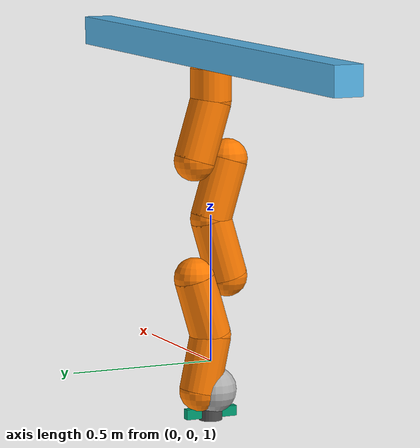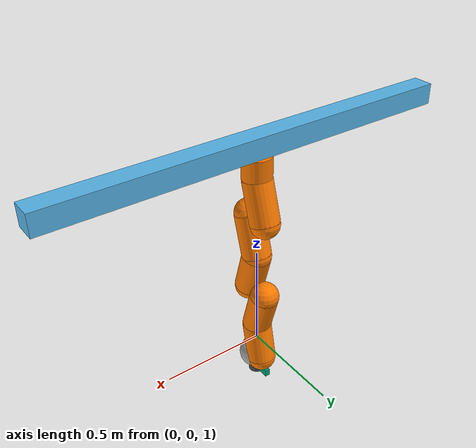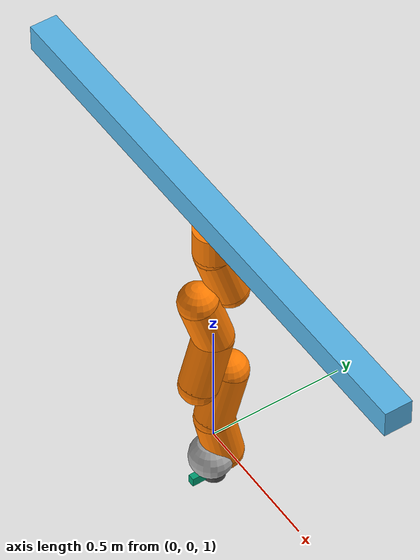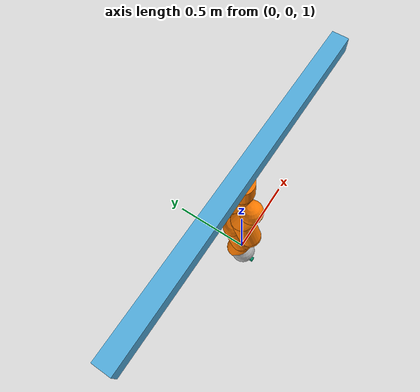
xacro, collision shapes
<?xml version="1.0"?>
<robot xmlns:xacro="http://www.ros.org/wiki/xacro" name="single_lwr_robot">

    <!-- Include all models -->
    <xacro:include filename="$(find lwr_description)/model/kuka_lwr.urdf.xacro"/>

    <link name="world" />
    <!-- and assemble your robot -->
    <link name="box">
        <inertial>
            <mass value="5.0"/>
            <origin rpy="0 0 0" xyz="0 0 0"/>
            <inertia ixx="0.01"
                     iyy="0.01"
                     izz="0.01"
                     ixy="0" iyz="0" ixz="0"/>
        </inertial>
        <visual>
            <origin xyz="0 0 2.05" rpy="0 0 0"/>
            <geometry>
                <box size="2.0 0.1 0.1"/>
            </geometry>
        </visual>
        <collision>
            <origin xyz="0 0 2.05" rpy="0 0 0"/>
            <geometry>
                <box size="2.0 0.1 0.1"/>
            </geometry>
        </collision>
    </link>

    <joint name="fix" type="fixed">
        <origin xyz="0 0 0" rpy="0 0 0"/>
        <parent link="world"/>
        <child link="box"/>
    </joint>

    <gazebo reference="box">
        <static>true</static>>
    </gazebo>

    <!-- using the models -->
    <xacro:kuka_lwr parent="box" name="lwr">
        <origin xyz="0 0 2" rpy="0 3.14 0"/>
    </xacro:kuka_lwr>

    --
    <xacro:include filename="$(find lwr_testing)/sensors/asus_camera.urdf.xacro" />

    <xacro:asus_camera name="xtion" parent="lwr_7_link" >
        <origin xyz="0 0 0" rpy="0 -1.57 0"/>
    </xacro:asus_camera>

</robot>

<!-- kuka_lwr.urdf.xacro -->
<robot name="kuka_lwr" xmlns:xacro="http://www.ros.org/wiki/xacro">

	<!-- utils /-->
	<xacro:include filename="$(find lwr_description)/model/utils.xacro"/>
	<xacro:include filename="$(find lwr_description)/model/kuka_materials.xacro"
	/>

	<!-- gazebo and transmission models /-->
	<xacro:include filename="$(find lwr_description)/model/kuka_lwr.gazebo.xacro"/>
	<xacro:include filename="$(find lwr_description)/model/kuka_lwr.transmission.xacro"/>

	<!-- properties /-->
	<xacro:property name="base_mass" value="2.0"/>
	<xacro:property name="link_mass" value="2.35"/>
    <xacro:property name="wrist_mass" value="1.1"/>
    <xacro:property name="tip_mass" value="0.25"/>
	<xacro:property name="velocity_scale" value="1"/>
	<xacro:property name="effort_scale" value="1"/>

	<xacro:property name="max_stiffness" value="5000"/>
	<xacro:property name="min_stiffness" value="0"/>
	<xacro:property name="rate_stiffness" value="20000"/> <!-- reflex to stiffness -->

	<!-- URDF model /-->
	<xacro:macro name="kuka_lwr" params="parent name *origin">

		<!-- First (shoulder) element of the arm. Fixed to its parent. -->
		<joint name="${parent}_${name}_base_joint" type="fixed">
			<xacro:insert_block name="origin"/>
			<origin xyz="0 0 0" rpy="0 0 0"/>
			<parent link="${parent}"/>
			<child link="${name}_base_link"/>
		</joint>

		<link name="${name}_base_link">
			<inertial>
				<mass value="${base_mass}"/>
				<origin xyz="0 0 0.055"  />
				<cylinder_inertia_def radius="0.06" length="0.11" mass="${base_mass}"/>
			</inertial>
			<visual>
				<origin xyz="0 0 0" rpy="0 0 ${M_PI}"/>
				<geometry>
					<mesh filename="package://lwr_description/meshes/lwr4plus/visual/base.STL"/>
				</geometry>
				<material name="Kuka/Orange"/>
			</visual>
			<collision>
				<origin xyz="0 0 0.055" rpy="0 0 ${M_PI}"/>
				<geometry>
					<cylinder radius="0.07" length="0.11"/>
				</geometry>
			</collision>
		</link>

		<!-- Second segment of the arm. Joint along z-axis -->
		<joint name="${name}_a1_joint" type="revolute">
			<origin xyz="0 0 0.11" rpy="0 0 0"/>
			<axis xyz="0 0 1"/>
			<limit lower="${-170 * M_PI / 180}" upper="${170 * M_PI / 180}" effort="176" velocity="${velocity_scale * 110 * M_PI / 180}" />
			<dynamics friction="10.0" damping="1.0"/>
			<parent link="${name}_base_link"/>
			<child link="${name}_1_link"/>
		</joint>

		<joint name="${name}_a1_joint_stiffness" type="revolute">
			<axis xyz="0 0 1"/>
			<limit lower="${min_stiffness}" upper="${max_stiffness}" effort="0" velocity="${rate_stiffness}" />
			<safety_controller soft_lower_limit="${min_stiffness}" soft_upper_limit="${max_stiffness}" k_position="30" k_velocity="30"/>
			<parent link="${name}_base_link"/>
			<child link="${name}_1_link_dummy"/>
		</joint>
		<link name="${name}_1_link_dummy"/>

		<link name="${name}_1_link">
			<inertial>
				<mass value="${link_mass}"/>
				<origin rpy="0 0 0" xyz="0 -0.06 0.130"/>
				<cuboid_inertia_def length="0.12" width="0.06" height="0.260" mass="${link_mass}"/>
			</inertial>
			<visual>
				<origin xyz="0 0 -0.008" rpy="0 0 ${M_PI}"/>
				<geometry>
					<mesh filename="package://lwr_description/meshes/lwr4plus/visual/link_1.STL"/>
				</geometry>
				<material name="Kuka/Orange"/>
			</visual>
			<collision>
				<origin xyz="0 0 0.0" rpy="0 0 0"/>
				<geometry>
					<sphere radius="0.07"/>
				</geometry>
			</collision>
			<collision>
				<origin xyz="0 0.06 0.2" rpy="0 0 0"/>
				<geometry>
					<sphere radius="0.07"/>
				</geometry>
			</collision>
			<collision>
				<origin xyz="0 0.03 0.1" rpy="-0.291 0 0"/>
				<geometry>
					<cylinder radius="0.07" length="0.208"/>
				</geometry>
			</collision>
		</link>

		<!-- Third segment of the arm. Joint along y-axis -->
		<joint name="${name}_a2_joint" type="revolute">
			<origin xyz="0 0 0.2005" rpy="0 0 0"/>
			<axis xyz="0 -1 0"/>
			<limit lower="${-120 * M_PI / 180}" upper="${120 * M_PI / 180}" effort="176" velocity="${velocity_scale * 110 * M_PI / 180}" />
			<dynamics friction="10.0" damping="1.0"/>
			<parent link="${name}_1_link"/>
			<child link="${name}_2_link"/>
		</joint>

		<joint name="${name}_a2_joint_stiffness" type="revolute">
			<axis xyz="0 0 1"/>
			<limit lower="${min_stiffness}" upper="${max_stiffness}" effort="0" velocity="${rate_stiffness}" />
			<safety_controller soft_lower_limit="${min_stiffness}" soft_upper_limit="${max_stiffness}" k_position="30" k_velocity="30"/>
			<parent link="${name}_1_link"/>
			<child link="${name}_2_link_dummy"/>
		</joint>
		<link name="${name}_2_link_dummy"/>

		<link name="${name}_2_link">
			<inertial>
				<mass value="${link_mass}"/>
				<origin rpy="0 0 0" xyz="0 0.06 ${0.130 - 0.06}"/>
				<cuboid_inertia_def length="0.12" width="0.06" height="0.260" mass="${link_mass}"/>
			</inertial>

			<visual>
				<origin xyz="0 0 0.0" rpy="0 0 ${M_PI}"/>
				<geometry>
					<mesh filename="package://lwr_description/meshes/lwr4plus/visual/link_2.STL"/>
				</geometry>
				<material name="Kuka/Orange"/>
			</visual>
			<collision>
				<origin xyz="0 0 0.2" rpy="0 0 0"/>
				<geometry>
					<sphere radius="0.07"/>
				</geometry>
			</collision>
			<collision>
				<origin xyz="0 -0.06 0.0" rpy="0 0 0"/>
				<geometry>
					<sphere radius="0.07"/>
				</geometry>
			</collision>
			<collision>
				<origin xyz="0 -0.03 0.1" rpy="-0.291 0 0"/>
				<geometry>
					<cylinder radius="0.07" length="0.208"/>
				</geometry>
			</collision>
		</link>

		<!-- Fourth element of the arm. z-axis -->
		<joint name="${name}_e1_joint" type="revolute">
			<origin xyz="0 0 0.20" rpy="0 0 0"/>
			<axis xyz="0 0 1"/>
			<limit lower="${-170 * M_PI / 180}" upper="${170 * M_PI / 180}" effort="100" velocity="${velocity_scale * 128 * M_PI / 180}" />
			<dynamics friction="10.0" damping="1.0"/>
			<parent link="${name}_2_link"/>
			<child link="${name}_3_link"/>
		</joint>

		<joint name="${name}_e1_joint_stiffness" type="revolute">
			<axis xyz="0 0 1"/>
			<limit lower="${min_stiffness}" upper="${max_stiffness}" effort="0" velocity="${rate_stiffness}" />
			<safety_controller soft_lower_limit="${min_stiffness}" soft_upper_limit="${max_stiffness}" k_position="30" k_velocity="30"/>
			<parent link="${name}_2_link"/>
			<child link="${name}_3_link_dummy"/>
		</joint>
		<link name="${name}_3_link_dummy"/>

		<link name="${name}_3_link">
			<inertial>
				<mass value="${link_mass}"/>
				<origin rpy="0 0 0" xyz="0 0.06 0.130"/>
				<cuboid_inertia_def length="0.12" width="0.06" height="0.260" mass="${link_mass}"/>
			</inertial>

			<visual>
				<origin xyz="0 0 -0.008" rpy="0 0 ${M_PI}"/>
				<geometry>
					<mesh filename="package://lwr_description/meshes/lwr4plus/visual/link_3.STL"/>
				</geometry>
				<material name="Kuka/Orange"/>
			</visual>
			<collision>
				<origin xyz="0 0 0.0" rpy="0 0 0"/>
				<geometry>
					<sphere radius="0.07"/>
				</geometry>
			</collision>
			<collision>
				<origin xyz="0 -0.06 0.2" rpy="0 0 0"/>
				<geometry>
					<sphere radius="0.07"/>
				</geometry>
			</collision>
			<collision>
				<origin xyz="0 -0.03 0.1" rpy="0.291 0 0"/>
				<geometry>
					<cylinder radius="0.07" length="0.208"/>
				</geometry>
			</collision>
		</link>

		<!-- fifth element of the arm. x-axis -->
		<joint name="${name}_a3_joint" type="revolute">
			<origin xyz="0 0 0.20" rpy="0 0 0"/>
			<axis xyz="0 1 0"/>
			<limit lower="${-120 * M_PI / 180}" upper="${120 * M_PI / 180}" effort="100" velocity="${velocity_scale * 128 * M_PI / 180}" />
			<dynamics friction="10.0" damping="1.0"/>
			<parent link="${name}_3_link"/>
			<child link="${name}_4_link"/>
		</joint>

		<joint name="${name}_a3_joint_stiffness" type="revolute">
			<axis xyz="0 0 1"/>
			<limit lower="${min_stiffness}" upper="${max_stiffness}" effort="0" velocity="${rate_stiffness}" />
			<safety_controller soft_lower_limit="${min_stiffness}" soft_upper_limit="${max_stiffness}" k_position="30" k_velocity="30"/>
			<parent link="${name}_3_link"/>
			<child link="${name}_4_link_dummy"/>
		</joint>
		<link name="${name}_4_link_dummy"/>

		<link name="${name}_4_link">
			<inertial>
				<mass value="${link_mass}"/>
				<origin rpy="0 0 0" xyz="0 -0.06 ${0.130 - 0.06}"/>
				<cuboid_inertia_def length="0.12" width="0.06" height="0.2600" mass="${link_mass}"/>
			</inertial>

			<visual>
				<origin xyz="0 0 0.0" rpy="0 0 ${M_PI}"/>
				<geometry>
					<mesh filename="package://lwr_description/meshes/lwr4plus/visual/link_4.STL"/>
				</geometry>
				<material name="Kuka/Orange"/>
			</visual>
			<collision>
			<origin xyz="0 0 0.2" rpy="0 0 0"/>
			<geometry>
				<sphere radius="0.07"/>
			</geometry>
			</collision>
			<collision>
				<origin xyz="0 0.06 0.0" rpy="0 0 0"/>
				<geometry>
					<sphere radius="0.07"/>
				</geometry>
			</collision>
			<collision>
				<origin xyz="0 0.03 0.1" rpy="0.291 0 0"/>
				<geometry>
					<cylinder radius="0.07" length="0.208"/>
				</geometry>
			</collision>
		</link>

		<!-- Sixth element of the arm. z-axis -->
		<joint name="${name}_a4_joint" type="revolute">
			<origin xyz="0 0 0.20" rpy="0 0 0"/>
			<axis xyz="0 0 1"/>
			<limit lower="${-170 * M_PI / 180}" upper="${170 * M_PI / 180}" effort="100" velocity="${velocity_scale * 204 * M_PI / 180}" />
			<dynamics friction="10.0" damping="1.0"/>
			<parent link="${name}_4_link"/>
			<child link="${name}_5_link"/>
		</joint>

		<joint name="${name}_a4_joint_stiffness" type="revolute">
			<axis xyz="0 0 1"/>
			<limit lower="${min_stiffness}" upper="${max_stiffness}" effort="0" velocity="${rate_stiffness}" />
			<safety_controller soft_lower_limit="${min_stiffness}" soft_upper_limit="${max_stiffness}" k_position="30" k_velocity="30"/>
			<parent link="${name}_4_link"/>
			<child link="${name}_5_link_dummy"/>
		</joint>
		<link name="${name}_5_link_dummy"/>

		<link name="${name}_5_link">
			<inertial>
				<mass value="${link_mass}"/>
				<origin rpy="0 0 0" xyz="0 0 0.124"/>
				<cuboid_inertia_def length="0.12" width="0.06" height="0.248" mass="${link_mass}"/>
			</inertial>

			<visual>
				<origin xyz="0 0 -0.008" rpy="0 0 ${M_PI}"/>
				<geometry name="${name}_5_geom">
					<mesh filename="package://lwr_description/meshes/lwr4plus/visual/link_5.STL"/>
				</geometry>
				<material name="Kuka/Orange"/>
			</visual>

			<collision>
				<origin xyz="0 0 0.0" rpy="0 0 0"/>
				<geometry>
					<sphere radius="0.07"/>
				</geometry>
			</collision>
			<collision>
				<origin xyz="0 0.04 0.19" rpy="0 0 0"/>
				<geometry>
					<sphere radius="0.07"/>
				</geometry>
			</collision>
			<collision>
				<origin xyz="0 0.02 0.095" rpy="-0.207 0 0"/>
				<geometry>
					<cylinder radius="0.07" length="0.198"/>
				</geometry>
			</collision>
		</link>

		<!-- Seventh element of the arm. z-axis -->
		<joint name="${name}_a5_joint" type="revolute">
			<origin xyz="0 0 0.19" rpy="0 0 0"/>
			<axis xyz="0 -1 0"/>
			<limit lower="${-120 * M_PI / 180}" upper="${120 * M_PI / 180}" effort="38" velocity="${velocity_scale * 184 * M_PI / 180}" />
			<dynamics friction="10.0" damping="1.0"/>
			<parent link="${name}_5_link"/>
			<child link="${name}_6_link"/>
		</joint>

		<joint name="${name}_a5_joint_stiffness" type="revolute">
			<axis xyz="0 0 1"/>
			<limit lower="${min_stiffness}" upper="${max_stiffness}" effort="0" velocity="${rate_stiffness}" />
			<safety_controller soft_lower_limit="${min_stiffness}" soft_upper_limit="${max_stiffness}" k_position="30" k_velocity="30"/>
			<parent link="${name}_5_link"/>
			<child link="${name}_6_link_dummy"/>
		</joint>
		<link name="${name}_6_link_dummy"/>

		<link name="${name}_6_link">
			<inertial>
				<mass value="${wrist_mass}"/>
				<origin rpy="0 0 0" xyz="0 0 0.0625"/>
				<cuboid_inertia_def length="0.125" width="0.125" height="0.125" mass="${wrist_mass}"/>
			</inertial>

			<visual>
				<origin xyz="0 0 0" rpy="0 0 ${M_PI}"/>
				<geometry>
					<mesh filename="package://lwr_description/meshes/lwr4plus/visual/link_6.STL"/>
				</geometry>
			<material name="Kuka/Grey"/>
			</visual>
			<collision>
			<origin xyz="0 -0.01 0" rpy="0 0 ${M_PI}"/>
			<geometry>
				<sphere radius="0.08"/>
			</geometry>
			</collision>
		</link>

		<!-- Eighth element of the arm. z-axis -->
		<joint name="${name}_a6_joint" type="revolute">
			<origin xyz="0 0 0.078" rpy="0 0 0"/>
			<axis xyz="0 0 1"/>
			<limit lower="${-170 * M_PI / 180}" upper="${170 * M_PI / 180}" effort="38" velocity="${velocity_scale * 184 * M_PI / 180}" />
			<dynamics friction="10.0" damping="1.0"/>
			<parent link="${name}_6_link"/>
			<child link="${name}_7_link"/>
		</joint>

		<joint name="${name}_a6_joint_stiffness" type="revolute">
			<axis xyz="0 0 1"/>
			<limit lower="${min_stiffness}" upper="${max_stiffness}" effort="0" velocity="${rate_stiffness}" />
			<safety_controller soft_lower_limit="${min_stiffness}" soft_upper_limit="${max_stiffness}" k_position="30" k_velocity="30"/>
			<parent link="${name}_6_link"/>
			<child link="${name}_7_link_dummy"/>
		</joint>
		<link name="${name}_7_link_dummy"/>

		<link name="${name}_7_link">
			<inertial>
				<mass value="${tip_mass}"/>
				<origin xyz="0 0 0"/>
				<cuboid_inertia_def length="0.1" width="0.1" height="0.1" mass="${tip_mass}"/>
			</inertial>
			<visual>
				<origin xyz="0 0 0" rpy="0 0 ${M_PI}"/>
				<geometry>
					<mesh filename="package://lwr_description/meshes/lwr4plus/visual/link_7.STL"/>
				</geometry>
			<material name="Kuka/DarkGrey"/>
			</visual>

			<collision>
			<origin xyz="0 0 0" rpy="0 0 ${M_PI}"/>
			<geometry>
				<cylinder radius="0.04" length="0.05"/>
			</geometry>
			</collision>
		</link>

		<xacro:kuka_lwr_gazebo name="${name}"/>
		<xacro:kuka_lwr_transmission name="${name}"/>

	</xacro:macro>

</robot>

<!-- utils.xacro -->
<robot xmlns:xacro="http://www.ros.org/wiki/xacro">

  <xacro:property name="M_PI" value="3.1415926535897931"/>

  <!-- Little helper macro to define the inertia matrix needed for links. -->
  <xacro:macro name="cuboid_inertia_def" params="width height length mass">
    <inertia ixx="${mass * (height * height + length * length) / 12}"
             iyy="${mass * (width * width + length * length) / 12}"
             izz="${mass * (width * width + height * height) / 12}"
             ixy="0" iyz="0" ixz="0"/>
  </xacro:macro>

  <!-- length is along the y-axis! -->
  <xacro:macro name="cylinder_inertia_def" params="radius length mass">
    <inertia ixx="${mass * (3 * radius * radius + length * length) / 12}"
             iyy="${mass * radius* radius / 2}"
             izz="${mass * (3 * radius * radius + length * length) / 12}"
             ixy="0" iyz="0" ixz="0"/>
  </xacro:macro>

</robot>

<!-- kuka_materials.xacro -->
<robot xmlns:xacro="http://www.ros.org/wiki/xacro">
  <material name="Kuka/DarkGrey">
    <color rgba="0.3 0.3 0.3 1.0"/>
  </material>

  <material name="Kuka/LightGrey">
    <color rgba="0.8 0.8 0.8 1.0"/>
  </material>

  <material name="Kuka/Red">
    <color rgba="0.3 0.3 0.3 1.0"/>
  </material>

  <material name="Kuka/Black">
    <color rgba="0 0 0 1.0"/>
  </material>

  <material name="Kuka/Orange">
    <color rgba="1.0 0.487 0 1.0"/>
  </material>

  <material name="Kuka/Silver">
    <color rgba="1.0 1.0 1.0 1.0"/>
  </material>

  <material name="Kuka/Grey">
    <color rgba="0.7 0.7 0.7 1.0"/>
  </material>

  <material name="Kuka/Blue">
    <color rgba="0.0 0.0 0.8 1.0"/>
  </material>

</robot>

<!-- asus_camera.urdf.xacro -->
<robot xmlns:xacro="http://ros.org/wiki/xacro">
    <xacro:property name="M_PI" value="3.1415926535897931" />
    <xacro:property name="mesh_scale" value="1" />

    <xacro:macro name="asus_camera_model" params="name parent *origin">
      <joint name="${name}_joint" type="fixed">
        <xacro:insert_block name="origin" />
        <parent link="${parent}"/>
        <child link="${name}_link"/>
      </joint>

      <link name="${name}_depth_sensor" />
      <joint name="${name}_sensor_joint" type="fixed">
        <origin xyz="0 0 0" rpy="0 1.57 0"/>
        <parent link="${name}_link"/>
        <child link="${name}_depth_sensor"/>
      </joint>

      <link name="${name}_link">
        <inertial>
          <mass value="0.200" />
          <origin xyz="0 0 0" rpy="0 0 0" />
          <inertia ixx="5.8083e-4" ixy="0" ixz="0" iyy="3.0833e-5" iyz="0" izz="5.9083e-4" />
        </inertial>
        <visual>
          <origin xyz="0 0 0" rpy="0 0 0" />
          <geometry>
            <mesh filename="package://lwr_testing/meshes/asus_camera_simple.dae" scale="${mesh_scale} ${mesh_scale} ${mesh_scale}"/>
          </geometry>
        </visual>
        <collision>
          <origin xyz="0 0 0" rpy="0 0 0" />
          <geometry>
            <box size="0.035 0.185 0.025"/>
          </geometry>
        </collision>
      </link>

      <joint name="${name}_depth_joint" type="fixed">
        <origin xyz="0.0 0.0 0.0" rpy="0 0 0" />
        <parent link="${name}_link" />
        <child link="${name}_depth_frame"/>
      </joint>

      <link name="${name}_depth_frame"/>

      <joint name="${name}_depth_optical_joint" type="fixed">
        <origin xyz="0 0 0" rpy="0 0 0" />
        <parent link="${name}_depth_frame" />
        <child link="${name}_depth_optical_frame"/>
      </joint>

      <link name="${name}_depth_optical_frame"/>

      <joint name="${name}_rgb_joint" type="fixed">
        <origin xyz="0.0 0.0 0.0" rpy="0 0 0" />
        <parent link="${name}_link" />
        <child link="${name}_rgb_frame"/>
      </joint>

      <link name="${name}_rgb_frame"/>

      <joint name="${name}_rgb_optical_joint" type="fixed">
        <origin xyz="0 0 0" rpy="0 0 0" />
        <parent link="${name}_rgb_frame" />
        <child link="${name}_rgb_optical_frame"/>
      </joint>

      <link name="${name}_rgb_optical_frame"/>
    </xacro:macro>

    <xacro:macro name="asus_camera" params="name parent *origin">
      <xacro:asus_camera_model name="${name}" parent="${parent}">
        <xacro:insert_block name="origin" />
      </xacro:asus_camera_model>

      <!-- ASUS Xtion PRO camera for simulation -->
      <gazebo reference="${name}_depth_frame">
        <sensor type="depth" name="${name}">
          <update_rate>20</update_rate>
          <camera>
            <horizontal_fov>${62.8 * M_PI/180.0}</horizontal_fov>
            <image>
              <format>B8G8R8</format>
              <width>640</width>
              <height>480</height>
            </image>
            <clip>
              <near>0.3</near>
              <far>8.5</far>
            </clip>
          </camera>
          <plugin name="${name}_camera_controller" filename="libgazebo_ros_openni_kinect.so">
            <alwaysOn>true</alwaysOn>
            <updateRate>30</updateRate>
            <cameraName>${name}</cameraName>
            <imageTopicName>${name}/rgb/image_raw</imageTopicName>
            <cameraInfoTopicName>${name}/rgb/camera_info</cameraInfoTopicName>
            <depthImageTopicName>${name}/depth/image_raw</depthImageTopicName>
            <depthImageCameraInfoTopicName>${name}/depth/camera_info</depthImageCameraInfoTopicName>
            <pointCloudTopicName>${name}/depth/points</pointCloudTopicName>
            <frameName>${name}_depth_sensor</frameName>
            <distortion_k1>0.0</distortion_k1>
            <distortion_k2>0.0</distortion_k2>
            <distortion_k3>0.0</distortion_k3>
            <distortion_t1>0.0</distortion_t1>
            <distortion_t2>0.0</distortion_t2>
          </plugin>
        </sensor>
      </gazebo>
    </xacro:macro>
  </robot>
